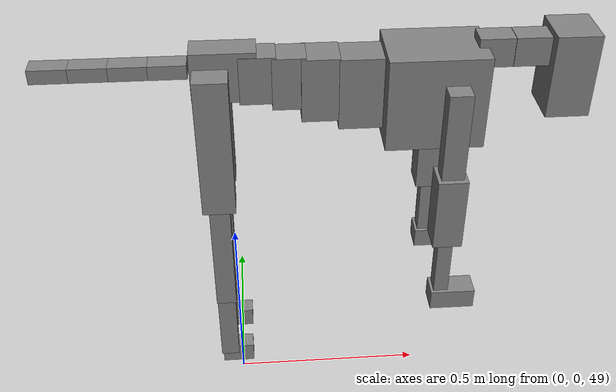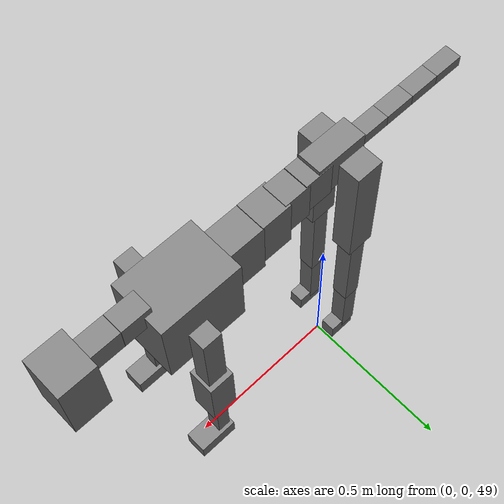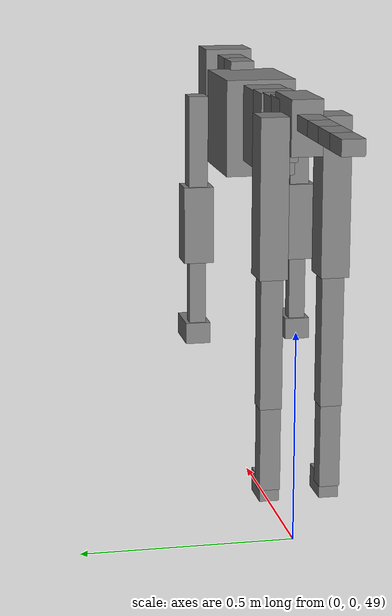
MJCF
<mujoco model="dog">

    <default>
        <joint armature="0.02" stiffness="1" damping="0.2" limited="true"/>
        <geom condim="3" friction="1 0.05 0.05" margin="0.01"/>
        <motor ctrllimited="true" ctrlrange="-1.0 1.0" forcelimited="true" gear="50"/>
    </default>

    <compiler inertiafromgeom="true" angle="radian"/>

    <option timestep="0.016" iterations="50" tolerance="1e-10" solver="Newton" jacobian="dense" cone="pyramidal"/>

    <size nconmax="20000" njmax="60000" nstack="5000000"/>
    <visual>
        <map force="0.1" zfar="30"/>
        <rgba haze="0.15 0.25 0.35 1"/>
        <quality shadowsize="2048"/>
        <global offwidth="800" offheight="800"/>
    </visual>

    <asset>
        <texture type="skybox" builtin="gradient" rgb1="0.3 0.5 0.7" rgb2="0 0 0" width="512" height="512"/>
        <texture name="texplane" type="2d" builtin="checker" rgb1=".2 .3 .4" rgb2=".1 0.15 0.2" width="512" height="512"
                 mark="cross" markrgb=".8 .8 .8"/>
        <texture name="texgeom" type="cube" builtin="flat" mark="cross" width="127" height="1278" rgb1="0.8 0.6 0.4"
                 rgb2="0.8 0.6 0.4" markrgb="1 1 1" random="0.01"/>

        <material name="matplane" reflectance="0.3" texture="texplane" texrepeat="1 1" texuniform="true"/>
        <material name="matgeom" texture="texgeom" texuniform="true" rgba="0.8 0.6 .4 1"/>
    </asset>

    <worldbody>
        <geom name="floor" pos="0 0 0" size="0 0 .25" type="plane" material="matplane" condim="3"/>

        <light directional="false" diffuse=".2 .2 .2" specular="0 0 0" pos="0 0 5" dir="0 0 -1" castshadow="false"/>
        <light mode="targetbodycom" target="torso" directional="false" diffuse=".8 .8 .8" specular="0.3 0.3 0.3"
               pos="0 0 4.0" dir="0 0 -1"/>

        <body name="root" pos="0 0 50">
            <freejoint name="root_1"/>
            <geom type="box" pos="0 0 -0.02" size="0.0774  0.0358  0.063" density="2030"/>

            <body name="spine1" pos="0.054 0 0">
                <joint name="spine1_y" axis="0 1 0" range="0 0.7" limited="true"/>
                <geom type="box" pos="0.02375 0 -0.03" size="0.04375  0.0375  0.05985" density="2030"/>

                <body name="spine2" pos="0.0612 0 0">
                    <joint name="spine2_y" axis="0 1 0" range="-0.15 0.15" limited="true"/>
                    <geom type="box" pos="0.03555  0  -0.04" size="0.04055  0.039  0.06615" density="2030"/>

                    <body name="spine3" pos="0.0730 0 0">
                        <joint name="spine3_y" axis="0 1 0" range="-0.15 0.15" limited="true"/>
                        <geom type="box" pos="0.03555  0  -0.057" size="0.04555  0.0445  0.081" density="2030"/>

                        <body name="spine4" pos="0.0780 0 0">
                            <joint name="spine4_y" axis="0 1 0" range="-0.15 0.15" limited="true"/>
                            <geom type="box" pos="0.05265  0  -0.07" size="0.05265  0.045  0.09135" density="2030"/>

                            <body name="torso" pos="0.1082 0 0">
                                <joint name="torso_y" axis="0 1 0" range="-0.15 0.15" limited="true"/>
                                <geom type="box" pos="0.11925  0  -0.085" size="0.11925  0.085  0.11745"
                                      density="2030"/>

                                <body name="neck1" pos="0.2160  0   0.0180">
                                    <joint name="neck1_y" axis="0 1 0" range="-1.2  -1" limited="true"/>
                                    <geom type="box" pos="0.0423  0  0" size="0.0423  0.03  0.036" density="2325"/>

                                    <body name="neck2" pos="0.0853  0  0">
                                        <joint name="neck2_y" axis="0 1 0" range="0.1  0" limited="true"/>
                                        <geom type="box" pos="0.0423  0  0" size="0.0423  0.03  0.036" density="2325"/>

                                        <body name="head" pos="0.0853  0  0">
                                            <joint name="head_y" axis="0 1 0" range="-0.3  -0.2" limited="true"/>
                                            <geom type="box" pos="0.0531  0  -0.055" size="0.0531  0.06  0.1044"
                                                  density="4030"/>

                                        </body>
                                    </body>
                                </body>

                                <body name="front_shoulder" pos="0.156  0   -0.0480">
                                    <joint name="front_shoulder_y" axis="0 1 0" range="-1 1.5" limited="true"/>
                                    <geom type="box" pos="0 0.13 -0.1004" size="0.0279  0.0239  0.1271" density="1158"/>
                                    <geom type="box" pos="0 -0.13 -0.1004" size="0.0279  0.0239  0.1271"
                                          density="1158"/>

                                    <body name="front_elbow" pos="0  0  -0.2008">
                                        <joint name="front_elbow_y" axis="0 1 0" range="-2 0" limited="true"/>
                                        <geom type="box" pos="0 0.13 -0.0968" size="0.0366  0.0374  0.0968"
                                              density="1081"/>
                                        <geom type="box" pos="0 -0.13 -0.0968" size="0.0366  0.0374  0.0968"
                                              density="1081"/>

                                        <body name="front_wrist" pos="0  0  -0.1936">
                                            <joint name="front_wrist_y" axis="0 1 0" range="-0.2 0" limited="true"/>
                                            <geom type="box" pos="0 0.13 -0.0869" size="0.0187  0.0208  0.1000"
                                                  density="1664"/>
                                            <geom type="box" pos="0 -0.13 -0.0869" size="0.0187  0.0208  0.1000"
                                                  density="1664"/>

                                            <body name="front_finger_end" pos="0  0  -0.1738">
                                                <joint name="front_finger_y" axis="0 1 0" range="-0.4 1"
                                                       limited="true"/>
                                                <geom type="box" pos="0.0311  0.13  -0.0118"
                                                      size="0.0570  0.0311  0.0268" density="1515"/>
                                                <geom type="box" pos="0.0311  -0.13  -0.0118"
                                                      size="0.0570  0.0311  0.0268" density="1515"/>

                                            </body>

                                        </body>
                                    </body>
                                </body>

                            </body>
                        </body>
                    </body>
                </body>
            </body>

            <body name="back_hip" pos="-0.03 0 -0.018">
                <joint name="back_hip_y" axis="0 1 0" range="-1.5 0.3" limited="true"/>
                <geom type="box" pos="0 0.07 -0.1588" size="0.0413  0.0324  0.1816" density="1154"/>
                <geom type="box" pos="0 -0.07 -0.1588" size="0.0413  0.0324  0.1816" density="1154"/>

                <body name="back_knee" pos="0  0  -0.3175">
                    <joint name="back_knee_y" axis="0 1 0" range="0 2.8" limited="true"/>
                    <geom type="box" pos="0 0.07 -0.1550" size="0.0257  0.0253  0.1706" density="1227"/>
                    <geom type="box" pos="0 -0.07 -0.1550" size="0.0257  0.0253  0.1706" density="1227"/>

                    <body name="back_ankle" pos="0  0  -0.3101">
                        <joint name="back_ankle_y" axis="0 1 0" range="-2.2 0" limited="true"/>
                        <geom type="box" pos="0 0.07 -0.0987" size="0.0236  0.0236  0.1099" density="1284"/>
                        <geom type="box" pos="0 -0.07 -0.0987" size="0.0236  0.0236  0.1099" density="1284"/>

                        <body name="back_toe_end" pos="0  0  -0.1974">
                            <joint name="back_toe_y" axis="0 1 0" range="-0.4 1" limited="true"/>
                            <geom type="box" pos="0.0226  0.07  -0.0122" size="0.0415  0.0226  0.0272" density="1515"/>
                            <geom type="box" pos="0.0226  -0.07  -0.0122" size="0.0415  0.0226  0.0272" density="1515"/>

                        </body>
                    </body>
                </body>
            </body>

            <body name="tail1" pos="-0.074 0 -0.006">
                <joint name="tail1_y" axis="0 1 0" range="-0.2 0.2" limited="true"/>
                <geom type="box" pos="-0.0536  0  0" size="0.045  0.025  0.0175" density="1587"/>

                <body name="tail2" pos="-0.09 0 0">
                    <joint name="tail2_y" axis="0 1 0" range="-0.2 0.2" limited="true"/>
                    <geom type="box" pos="-0.0536  0  0" size="0.045  0.025  0.0175" density="1587"/>

                    <body name="tail3" pos="-0.09 0 0">
                        <joint name="tail3_y" axis="0 1 0" range="-0.2 0.2" limited="true"/>
                        <geom type="box" pos="-0.0536  0  0" size="0.045  0.025  0.0175" density="1587"/>

                        <body name="tail4" pos="-0.09 0 0">
                            <joint name="tail4_y" axis="0 1 0" range="-0.2 0.2" limited="true"/>
                            <geom type="box" pos="-0.0536  0  0" size="0.045  0.025  0.0175" density="1587"/>

                        </body>
                    </body>
                </body>
            </body>
        </body>
    </worldbody>

    <actuator>
        <motor joint="spine1_y" forcerange="-150 150     "/>
        <motor joint="spine2_y" forcerange="-150 150     "/>
        <motor joint="spine3_y" forcerange="-150 150     "/>
        <motor joint="spine4_y" forcerange="-150 150     "/>
        <motor joint="torso_y" forcerange="-150 150     "/>
        <motor joint="neck1_y" forcerange="-100 100       "/>
        <motor joint="neck2_y" forcerange="-100 100       "/>
        <motor joint="head_y" forcerange="-150 150       "/>
        <motor joint="front_shoulder_y" forcerange="-100.04 159.01"/>
        <motor joint="front_elbow_y" forcerange="-174.92 196.97"/>
        <motor joint="front_wrist_y" forcerange="-78.02 88.12"/>
        <motor joint="front_finger_y" forcerange="-60.05 65.70"/>
        <motor joint="back_hip_y" forcerange="-274.35 357.07"/>
        <motor joint="back_knee_y" forcerange="-224.70 343.69"/>
        <motor joint="back_angle_y" forcerange="-119.44 158.55"/>
        <motor joint="back_toe_y" forcerange="-41.47 59.42"/>
        <motor joint="tail1_y" forcerange="-50 50     "/>
        <motor joint="tail2_y" forcerange="-50 50     "/>
        <motor joint="tail3_y" forcerange="-50 50     "/>
        <motor joint="tail4_y" forcerange="-50 50     "/>
    </actuator>
</mujoco>
